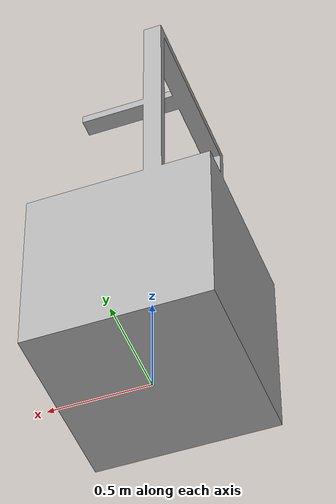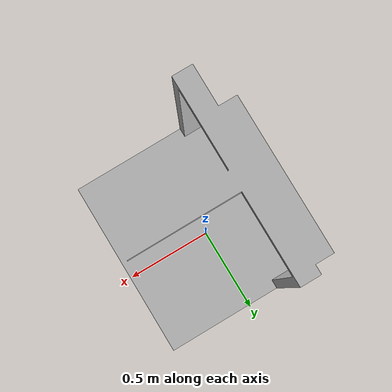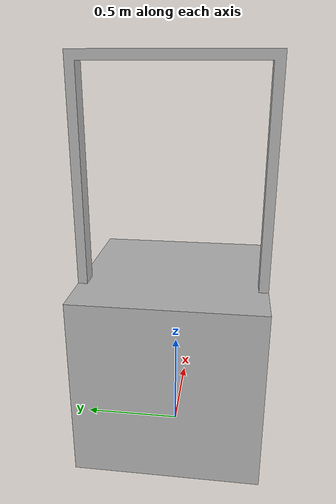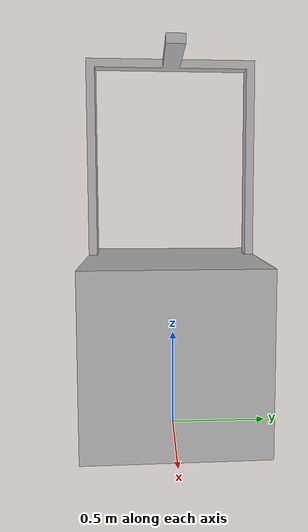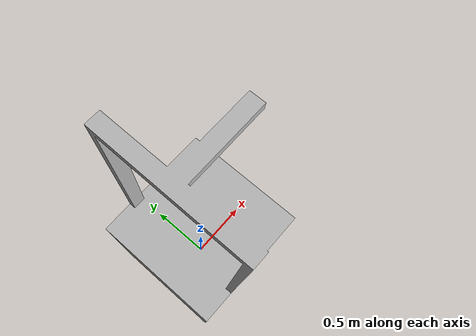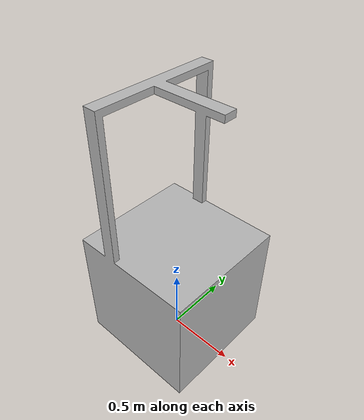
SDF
<?xml version="1.0" ?>
<sdf version="1.6">
  <model name="station">
    <link name="link">
      <inertial>
        <mass>1</mass>
      </inertial>
      <collision name="collision">
        <geometry>
          <mesh>
            <uri>model://station/meshes/station_collision.STL</uri>
            <scale>1 1 1</scale>
          </mesh>
        </geometry>
      </collision>
      <visual name="visual">
	    <geometry>
          <mesh>
            <uri>model://station/meshes/station_visual.DAE</uri>
          </mesh>
        </geometry>
        <meta>
            <layer> 1 </layer>
        </meta>
      </visual>
    </link>
  </model>
</sdf>
